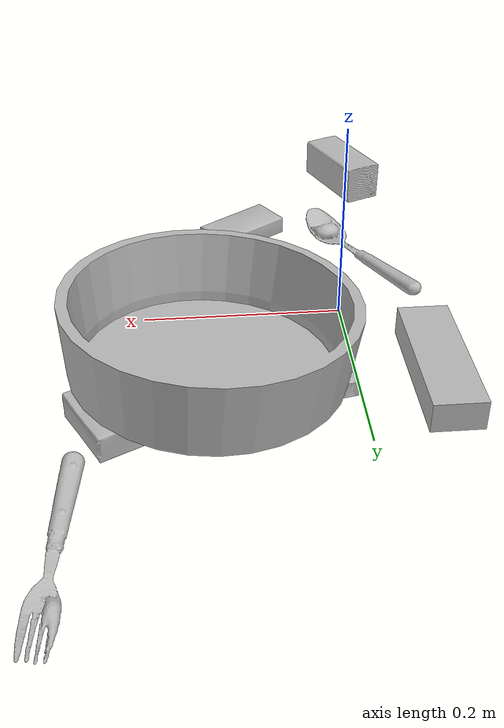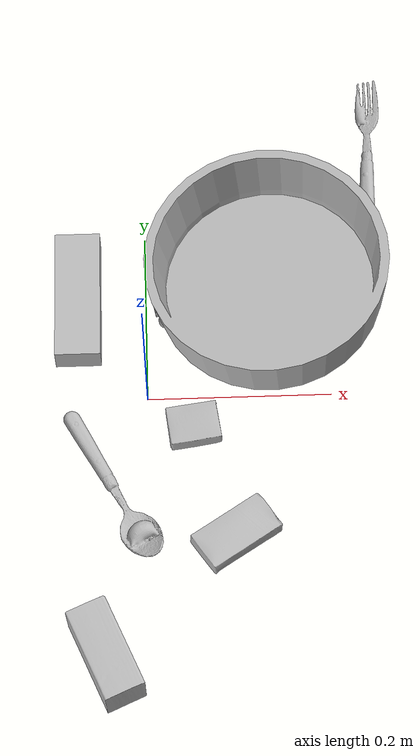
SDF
<sdf version="1.4">
  <world name="default">
    <light name="light1" type="point">
      <pose>0 0 1 0 0 0</pose>
      <diffuse>3 3 3 1</diffuse>
      <specular>3 3 3 1</specular>
    </light>
    <light name="light2" type="point">
      <pose>0 0.5 2 0 0 0</pose>
      <diffuse>1 1 1 1</diffuse>
      <specular>1 1 1 1</specular>
    </light>
    <light name="light3" type="point">
      <pose>0 0.5 2 0 0 0</pose>
      <diffuse>3 3 3 1</diffuse>
      <specular>3 3 3 1</specular>
    </light>
    <scene>
      <ambient>0.7 0.7 0.7</ambient>
    </scene>
    <model name="box11">
      <link name="link_box11">
        <collision name="default">
          <geometry>
            <mesh>
              <uri>model://jenga/collision_meshes/collision.obj</uri>
              <scale>1.0 1.0 1.0</scale>
            </mesh>
          </geometry>
          <surface>
            <friction>
              <ode>
                <mu>0.5</mu>
                <mu2>0.5</mu2>
              </ode>
            </friction>
          <contact>
        <ode>
            <max_vel>0</max_vel>
            <min_depth>0.0001</min_depth>
            <kp>1e8</kp>
        </ode>
    </contact></surface>
        </collision>
        <visual name="default">
          <geometry>
            <mesh>
              <uri>model://jenga/visual_meshes/visual.dae</uri>
              <scale>1.0 1.0 1.0</scale>
            </mesh>
          </geometry>
        </visual>
        <inertial>
          <mass>0.3186844289302826</mass>
          <pose>-2.502855807051674e-07 -0.0001025000965455547 -4.0923401684267446e-05 0.0 -7.34215461761844e-07 0.0</pose>
          <inertia>
            <ixx>8.818771e-05</ixx>
            <iyy>0.0005975576</iyy>
            <izz>0.00063794345</izz>
            <ixy>0</ixy>
            <ixz>0</ixz>
            <iyz>0</iyz>
          </inertia>
        </inertial>
      </link>
      <pose>-0.07497933506965637 0.11844053864479065 0.014999997802078724 7.283235115030653e-09 -1.6552062299145401e-09 1.5688872768719895</pose>
    </model>
    <model name="box12">
      <link name="link_box12">
        <collision name="default">
          <geometry>
            <mesh>
              <uri>model://pudding_box/collision_meshes/collision.obj</uri>
              <scale>0.5 0.5 0.5</scale>
            </mesh>
          </geometry>
          <surface>
            <friction>
              <ode>
                <mu>0.5</mu>
                <mu2>0.5</mu2>
              </ode>
            </friction>
          <contact>
        <ode>
            <max_vel>0</max_vel>
            <min_depth>0.0001</min_depth>
            <kp>1e8</kp>
        </ode>
    </contact></surface>
        </collision>
        <visual name="default">
          <geometry>
            <mesh>
              <uri>model://pudding_box/visual_meshes/visual.dae</uri>
              <scale>0.5 0.5 0.5</scale>
            </mesh>
          </geometry>
        </visual>
        <inertial>
          <mass>0.030172348022460938</mass>
          <pose>0.00024474109522998333 0.000403394311433658 -0.00025944141088984907 0.005213102256408686 -0.006603800110353006 0.02007982142872578</pose>
          <inertia>
            <ixx>8.527073e-06</ixx>
            <iyy>5.7370744e-06</iyy>
            <izz>1.259245e-05</izz>
            <ixy>0</ixy>
            <ixz>0</ixz>
            <iyz>0</iyz>
          </inertia>
        </inertial>
      </link>
      <pose>0.04880038648843765 -0.036645445972681046 0.009862905368208885 0.022348576607236343 -0.01139170662067371 -1.4485877920299755</pose>
    </model>
    <model name="box13">
      <link name="link_box13">
        <collision name="default">
          <geometry>
            <mesh>
              <uri>model://sugar_box/collision_meshes/collision.obj</uri>
              <scale>0.5 0.5 0.5</scale>
            </mesh>
          </geometry>
          <surface>
            <friction>
              <ode>
                <mu>0.5</mu>
                <mu2>0.5</mu2>
              </ode>
            </friction>
          <contact>
        <ode>
            <max_vel>0</max_vel>
            <min_depth>0.0001</min_depth>
            <kp>1e8</kp>
        </ode>
    </contact></surface>
        </collision>
        <visual name="default">
          <geometry>
            <mesh>
              <uri>model://sugar_box/visual_meshes/visual.dae</uri>
              <scale>0.5 0.5 0.5</scale>
            </mesh>
          </geometry>
        </visual>
        <inertial>
          <mass>0.12330043315887451</mass>
          <pose>0.0005171863595023751 1.924554817378521e-05 -0.0001818240125430748 -0.0004046263878582698 0.0010506634058618082 0.0026153787888998363</pose>
          <inertia>
            <ixx>2.5683388e-05</ixx>
            <iyy>8.301401e-05</iyy>
            <izz>9.937768e-05</izz>
            <ixy>0</ixy>
            <ixz>0</ixz>
            <iyz>0</iyz>
          </inertia>
        </inertial>
      </link>
      <pose>0.09053609520196915 -0.16361881792545319 0.011399306356906891 0.0007754344105424079 -0.023432847510309485 -2.565677544368525</pose>
    </model>
    <model name="box21">
      <link name="link_box21">
        <collision name="default">
          <geometry>
            <mesh>
              <uri>model://wood_block/collision_meshes/collision.obj</uri>
              <scale>0.5 0.5 0.5</scale>
            </mesh>
          </geometry>
          <surface>
            <friction>
              <ode>
                <mu>0.5</mu>
                <mu2>0.5</mu2>
              </ode>
            </friction>
          <contact>
        <ode>
            <max_vel>0</max_vel>
            <min_depth>0.0001</min_depth>
            <kp>1e8</kp>
        </ode>
    </contact></surface>
        </collision>
        <visual name="default">
          <geometry>
            <mesh>
              <uri>model://wood_block/visual_meshes/visual.dae</uri>
              <scale>0.5 0.5 0.5</scale>
            </mesh>
          </geometry>
        </visual>
        <inertial>
          <mass>0.22575385868549347</mass>
          <pose>-2.9066577553749084e-06 -0.00028540470520965755 0.00013204291462898254 -0.05220771918194674 -0.005192696213783058 -0.006861377697513623</pose>
          <inertia>
            <ixx>7.552322e-05</ixx>
            <iyy>0.00023857782</iyy>
            <izz>0.00023768542</izz>
            <ixy>0</ixy>
            <ixz>0</ixz>
            <iyz>0</iyz>
          </inertia>
        </inertial>
      </link>
      <pose>-0.04778197035193443 -0.295871376991272 0.022629259154200554 -0.005208308456354997 0.005718742585212356 1.9768343583575423</pose>
    </model>
    <model name="box22">
      <link name="link_box22">
        <collision name="default">
          <geometry>
            <mesh>
              <uri>model://cracker_box/collision_meshes/collision.obj</uri>
              <scale>0.25 0.25 0.25</scale>
            </mesh>
          </geometry>
          <surface>
            <friction>
              <ode>
                <mu>0.5</mu>
                <mu2>0.5</mu2>
              </ode>
            </friction>
          <contact>
        <ode>
            <max_vel>0</max_vel>
            <min_depth>0.0001</min_depth>
            <kp>1e8</kp>
        </ode>
    </contact></surface>
        </collision>
        <visual name="default">
          <geometry>
            <mesh>
              <uri>model://cracker_box/visual_meshes/visual.dae</uri>
              <scale>0.25 0.25 0.25</scale>
            </mesh>
          </geometry>
        </visual>
        <inertial>
          <mass>0.02141544781625271</mass>
          <pose>0.0002366038243053481 6.358561950037256e-05 -0.00042573839891701937 -0.000316207804917531 -0.011106489600095467 0.0025467954686493135</pose>
          <inertia>
            <ixx>3.4044588e-06</ixx>
            <iyy>5.62143e-06</iyy>
            <izz>8.022297e-06</izz>
            <ixy>0</ixy>
            <ixz>0</ixz>
            <iyz>0</iyz>
          </inertia>
        </inertial>
      </link>
      <pose>0.03302493691444397 0.12574206292629242 0.009398235008120537 0.02490683493757011 0.0033881006650816883 0.19620631552642212</pose>
    </model>
    <model name="box23">
      <link name="link_box23">
        <collision name="default">
          <geometry>
            <mesh>
              <uri>model://gelatin_box/collision_meshes/collision.obj</uri>
              <scale>1.0 1.0 1.0</scale>
            </mesh>
          </geometry>
          <surface>
            <friction>
              <ode>
                <mu>0.5</mu>
                <mu2>0.5</mu2>
              </ode>
            </friction>
          <contact>
        <ode>
            <max_vel>0</max_vel>
            <min_depth>0.0001</min_depth>
            <kp>1e8</kp>
        </ode>
    </contact></surface>
        </collision>
        <visual name="default">
          <geometry>
            <mesh>
              <uri>model://gelatin_box/visual_meshes/visual.dae</uri>
              <scale>1.0 1.0 1.0</scale>
            </mesh>
          </geometry>
        </visual>
        <inertial>
          <mass>0.2518538236618042</mass>
          <pose>0.00043196187471039593 0.00011156871914863586 -0.0003640321083366871 -0.001050372077086074 -0.00475581729336075 0.01644055760821351</pose>
          <inertia>
            <ixx>0.00017778824</ixx>
            <iyy>0.00012699323</iyy>
            <izz>0.00027063338</izz>
            <ixy>0</ixy>
            <ixz>0</ixz>
            <iyz>0</iyz>
          </inertia>
        </inertial>
      </link>
      <pose>0.21029584109783173 0.1593550443649292 0.015853073447942734 0.02664835099460388 -0.0012658629771557539 -1.069105986571483</pose>
    </model>
    <model name="plate1">
      <link name="link_plate1">
        <collision name="default">
          <geometry>
            <mesh>
              <uri>model://pan_tefal/collision_meshes/collision.obj</uri>
              <scale>1.0 1.0 1.0</scale>
            </mesh>
          </geometry>
          <surface>
            <friction>
              <ode>
                <mu>0.5</mu>
                <mu2>0.5</mu2>
              </ode>
            </friction>
          <contact>
        <ode>
            <max_vel>0</max_vel>
            <min_depth>0.0001</min_depth>
            <kp>1e8</kp>
        </ode>
    </contact></surface>
        </collision>
        <visual name="default">
          <geometry>
            <mesh>
              <uri>model://pan_tefal/visual_meshes/visual.dae</uri>
              <scale>1.0 1.0 1.0</scale>
            </mesh>
          </geometry>
        </visual>
        <inertial>
          <mass>1.2783581018447876</mass>
          <pose>-0.0001800234749680385 3.279297015978955e-05 -0.008514934219419956 0.0008190282028794127 -0.0003301398069692291 -0.33185125702417473</pose>
          <inertia>
            <ixx>0.0088244425</ixx>
            <iyy>0.008881334</iyy>
            <izz>0.016244099</izz>
            <ixy>0</ixy>
            <ixz>0</ixz>
            <iyz>0</iyz>
          </inertia>
        </inertial>
      </link>
      <pose>0.13463927805423737 0.11891531199216843 0.06249576061964035 -0.04846473379139437 0.07228013575804099 3.0742471411391517</pose>
    </model>
    <model name="silverware1">
      <link name="link_silverware1">
        <collision name="default">
          <geometry>
            <mesh>
              <uri>model://knife/collision_meshes/collision.obj</uri>
              <scale>1.0 1.0 1.0</scale>
            </mesh>
          </geometry>
          <surface>
            <friction>
              <ode>
                <mu>0.5</mu>
                <mu2>0.5</mu2>
              </ode>
            </friction>
          <contact>
        <ode>
            <max_vel>0</max_vel>
            <min_depth>0.0001</min_depth>
            <kp>1e8</kp>
        </ode>
    </contact></surface>
        </collision>
        <visual name="default">
          <geometry>
            <mesh>
              <uri>model://knife/visual_meshes/visual.dae</uri>
              <scale>1.0 1.0 1.0</scale>
            </mesh>
          </geometry>
        </visual>
        <inertial>
          <mass>0.028752580285072327</mass>
          <pose>-0.023785240948200226 0.0015275123296305537 5.0620223191799596e-05 0.07306965696526056 0.017248417457013686 -0.00740982691157592</pose>
          <inertia>
            <ixx>8.161146e-07</ixx>
            <iyy>0.000110462766</iyy>
            <izz>0.00011072555</izz>
            <ixy>0</ixy>
            <ixz>0</ixz>
            <iyz>0</iyz>
          </inertia>
        </inertial>
      </link>
      <pose>0.11908796429634094 0.07419738918542862 0.007944773882627487 0.004542853421565684 -0.014393365219790694 -0.18651927683789454</pose>
    </model>
    <model name="silverware2">
      <link name="link_silverware2">
        <collision name="default">
          <geometry>
            <mesh>
              <uri>model://spoon/collision_meshes/collision.obj</uri>
              <scale>1.0 1.0 1.0</scale>
            </mesh>
          </geometry>
          <surface>
            <friction>
              <ode>
                <mu>0.5</mu>
                <mu2>0.5</mu2>
              </ode>
            </friction>
          <contact>
        <ode>
            <max_vel>0</max_vel>
            <min_depth>0.0001</min_depth>
            <kp>1e8</kp>
        </ode>
    </contact></surface>
        </collision>
        <visual name="default">
          <geometry>
            <mesh>
              <uri>model://spoon/visual_meshes/visual.dae</uri>
              <scale>1.0 1.0 1.0</scale>
            </mesh>
          </geometry>
        </visual>
        <inertial>
          <mass>0.03275385871529579</mass>
          <pose>-0.005526320543140173 -0.0016034176805987954 -0.0007271653157658875 0.03521620701241808 -0.03906583474323888 0.006150609342160928</pose>
          <inertia>
            <ixx>1.8218228e-06</ixx>
            <iyy>0.00012462735</iyy>
            <izz>0.0001255258</izz>
            <ixy>0</ixy>
            <ixz>0</ixz>
            <iyz>0</iyz>
          </inertia>
        </inertial>
      </link>
      <pose>-0.03810271620750427 -0.10313776880502701 0.008385267108678818 0.0067297348378780155 0.0268929062042767 -1.0798020933512864</pose>
    </model>
    <model name="silverware3">
      <link name="link_silverware3">
        <collision name="default">
          <geometry>
            <mesh>
              <uri>model://fork/collision_meshes/collision.obj</uri>
              <scale>1.0 1.0 1.0</scale>
            </mesh>
          </geometry>
          <surface>
            <friction>
              <ode>
                <mu>0.5</mu>
                <mu2>0.5</mu2>
              </ode>
            </friction>
          <contact>
        <ode>
            <max_vel>0</max_vel>
            <min_depth>0.0001</min_depth>
            <kp>1e8</kp>
        </ode>
    </contact></surface>
        </collision>
        <visual name="default">
          <geometry>
            <mesh>
              <uri>model://fork/visual_meshes/visual.dae</uri>
              <scale>1.0 1.0 1.0</scale>
            </mesh>
          </geometry>
        </visual>
        <inertial>
          <mass>0.015051598660647869</mass>
          <pose>-0.029570037499070168 0.00046588244731538 0.0003218861238565296 -0.013550825752082697 -0.010977832944741694 0.014453903400543814</pose>
          <inertia>
            <ixx>5.2764364e-07</ixx>
            <iyy>3.9295395e-05</iyy>
            <izz>3.953141e-05</izz>
            <ixy>0</ixy>
            <ixz>0</ixz>
            <iyz>0</iyz>
          </inertia>
        </inertial>
      </link>
      <pose>0.2582707107067108 0.30174529552459717 0.0057515245862305164 -0.1896091515780016 0.02408944638691876 1.503349737635536</pose>
    </model>
  <physics type="ode">
      <max_contacts>50</max_contacts>
      <ode>
        <solver>
          <type>quick</type>
          <iters>75</iters>
        </solver>
        <constraints>
          <contact_max_correcting_vel>0</contact_max_correcting_vel>
          <contact_surface_layer>0</contact_surface_layer>
        </constraints>
      </ode>
    </physics></world>
</sdf>
